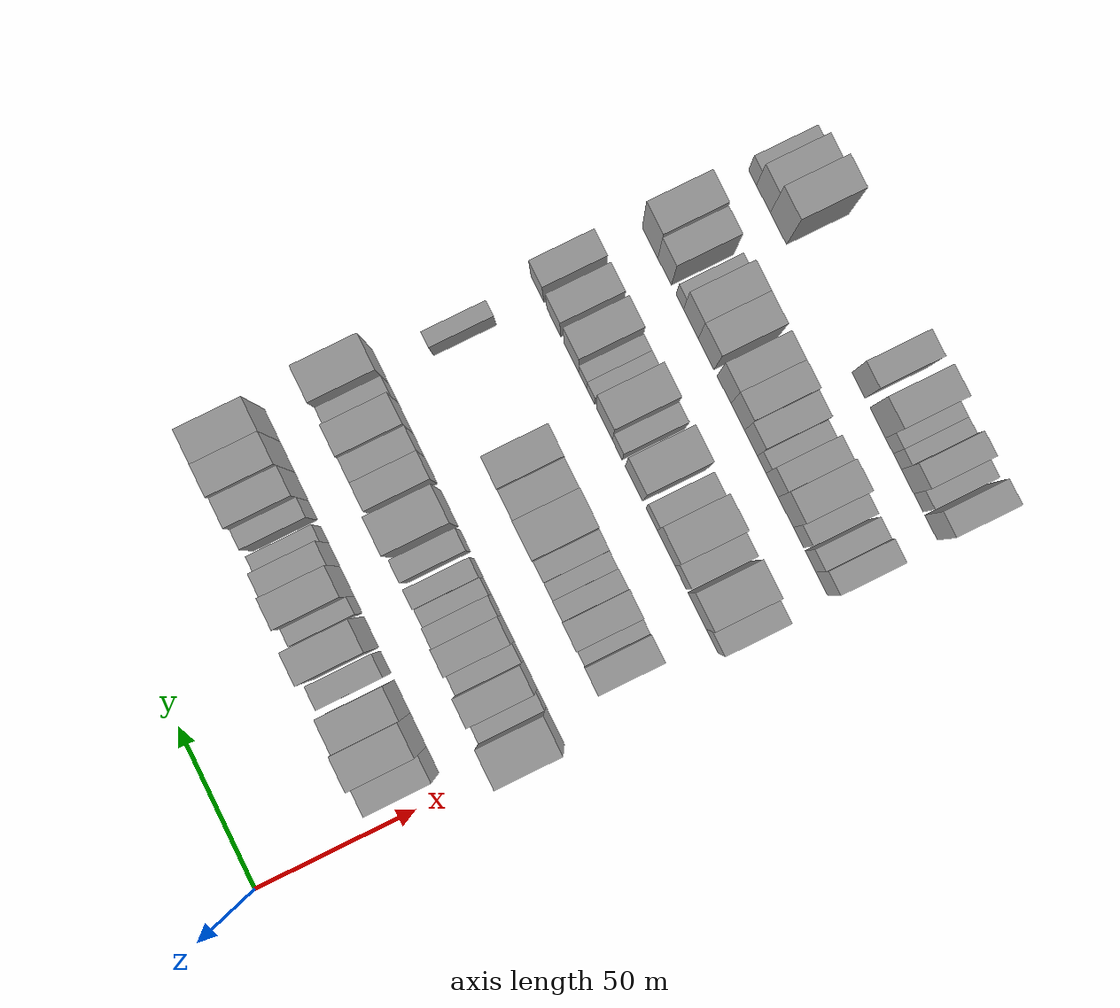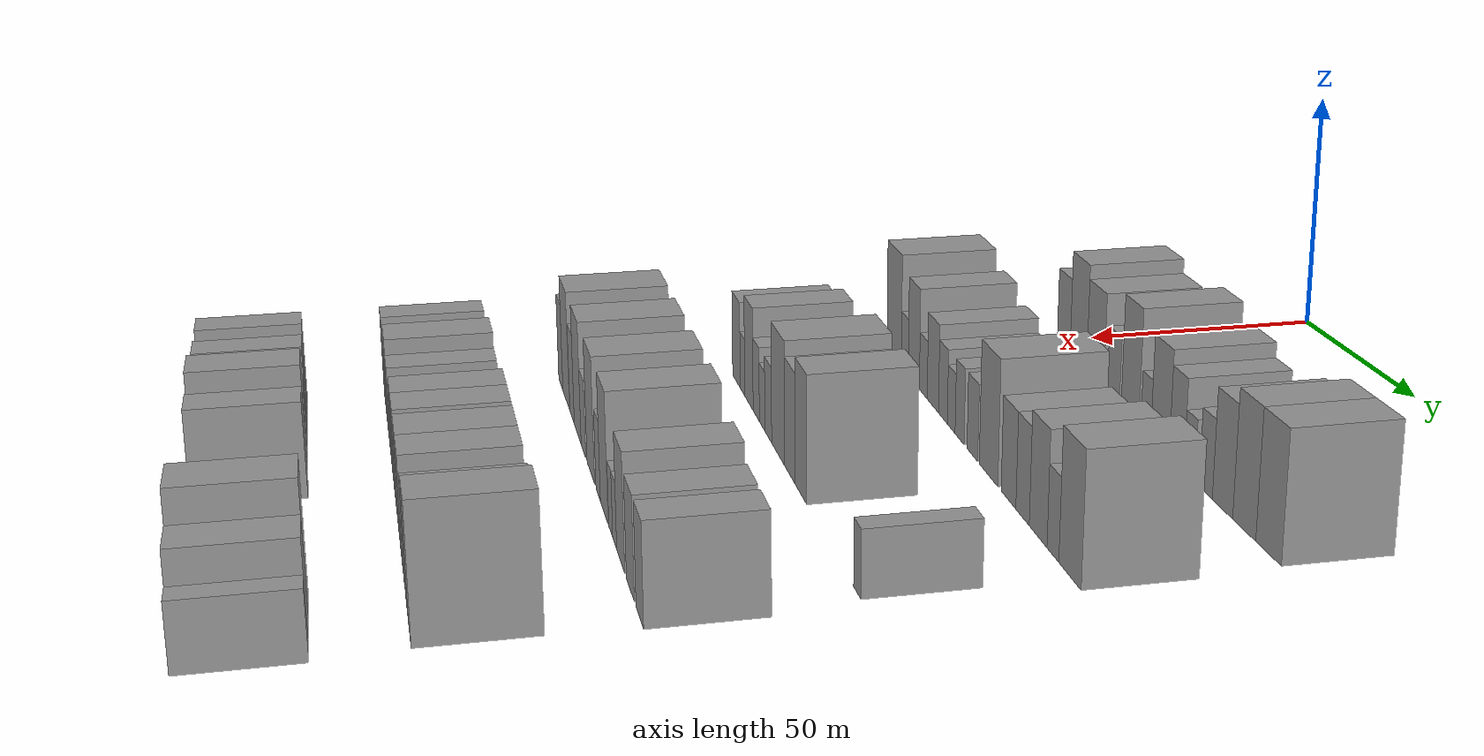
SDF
<sdf version="1.6">
 <world name="default">
  <model name="building_61">
   <static>1</static>
   <pose>50.0000 10.2967 0 0.000000 0.000000 0.000000</pose>
   <link name="link">
    <pose>0 0 9.00 0 0 0</pose>
    <collision name="collision"><geometry><box><size>20.0000 8.2506 18.0000</size></box></geometry></collision>
    <visual name="visual">
     <cast_shadows>0</cast_shadows>
     <geometry><box><size>20.0000 8.2506 18.0000</size></box></geometry>
     <material>
      <script>
       <uri>model://grey_wall/materials/scripts</uri>
       <uri>model://grey_wall/materials/textures</uri>
       <name>vrc/grey_wall</name>
      </script>
     </material>
    </visual>
   </link>
  </model>
  <model name="building_62">
   <static>1</static>
   <pose>50.0000 19.6122 0 0.000000 0.000000 0.000000</pose>
   <link name="link">
    <pose>0 0 12.00 0 0 0</pose>
    <collision name="collision"><geometry><box><size>20.0000 10.3805 24.0000</size></box></geometry></collision>
    <visual name="visual">
     <cast_shadows>0</cast_shadows>
     <geometry><box><size>20.0000 10.3805 24.0000</size></box></geometry>
     <material>
      <script>
       <uri>model://grey_wall/materials/scripts</uri>
       <uri>model://grey_wall/materials/textures</uri>
       <name>vrc/grey_wall</name>
      </script>
     </material>
    </visual>
   </link>
  </model>
  <model name="building_63">
   <static>1</static>
   <pose>50.0000 29.9259 0 0.000000 0.000000 0.000000</pose>
   <link name="link">
    <pose>0 0 10.50 0 0 0</pose>
    <collision name="collision"><geometry><box><size>20.0000 10.2469 21.0000</size></box></geometry></collision>
    <visual name="visual">
     <cast_shadows>0</cast_shadows>
     <geometry><box><size>20.0000 10.2469 21.0000</size></box></geometry>
     <material>
      <script>
       <uri>model://grey_wall/materials/scripts</uri>
       <uri>model://grey_wall/materials/textures</uri>
       <name>vrc/grey_wall</name>
      </script>
     </material>
    </visual>
   </link>
  </model>
  <model name="building_64">
   <static>1</static>
   <pose>50.0000 40.5911 0 0.000000 0.000000 0.000000</pose>
   <link name="link">
    <pose>0 0 7.50 0 0 0</pose>
    <collision name="collision"><geometry><box><size>20.0000 7.0836 15.0000</size></box></geometry></collision>
    <visual name="visual">
     <cast_shadows>0</cast_shadows>
     <geometry><box><size>20.0000 7.0836 15.0000</size></box></geometry>
     <material>
      <script>
       <uri>model://grey_wall/materials/scripts</uri>
       <uri>model://grey_wall/materials/textures</uri>
       <name>vrc/grey_wall</name>
      </script>
     </material>
    </visual>
   </link>
  </model>
  <model name="building_65">
   <static>1</static>
   <pose>50.0000 50.0073 0 0.000000 0.000000 0.000000</pose>
   <link name="link">
    <pose>0 0 12.00 0 0 0</pose>
    <collision name="collision"><geometry><box><size>20.0000 9.7487 24.0000</size></box></geometry></collision>
    <visual name="visual">
     <cast_shadows>0</cast_shadows>
     <geometry><box><size>20.0000 9.7487 24.0000</size></box></geometry>
     <material>
      <script>
       <uri>model://grey_wall/materials/scripts</uri>
       <uri>model://grey_wall/materials/textures</uri>
       <name>vrc/grey_wall</name>
      </script>
     </material>
    </visual>
   </link>
  </model>
  <model name="building_66">
   <static>1</static>
   <pose>50.0000 58.5451 0 0.000000 0.000000 0.000000</pose>
   <link name="link">
    <pose>0 0 6.00 0 0 0</pose>
    <collision name="collision"><geometry><box><size>20.0000 5.3269 12.0000</size></box></geometry></collision>
    <visual name="visual">
     <cast_shadows>0</cast_shadows>
     <geometry><box><size>20.0000 5.3269 12.0000</size></box></geometry>
     <material>
      <script>
       <uri>model://grey_wall/materials/scripts</uri>
       <uri>model://grey_wall/materials/textures</uri>
       <name>vrc/grey_wall</name>
      </script>
     </material>
    </visual>
   </link>
  </model>
  <model name="building_67">
   <static>1</static>
   <pose>50.0000 65.9376 0 0.000000 0.000000 0.000000</pose>
   <link name="link">
    <pose>0 0 10.50 0 0 0</pose>
    <collision name="collision"><geometry><box><size>20.0000 9.4582 21.0000</size></box></geometry></collision>
    <visual name="visual">
     <cast_shadows>0</cast_shadows>
     <geometry><box><size>20.0000 9.4582 21.0000</size></box></geometry>
     <material>
      <script>
       <uri>model://grey_wall/materials/scripts</uri>
       <uri>model://grey_wall/materials/textures</uri>
       <name>vrc/grey_wall</name>
      </script>
     </material>
    </visual>
   </link>
  </model>
  <model name="building_68">
   <static>1</static>
   <pose>50.0000 74.3340 0 0.000000 0.000000 0.000000</pose>
   <link name="link">
    <pose>0 0 9.00 0 0 0</pose>
    <collision name="collision"><geometry><box><size>20.0000 7.3345 18.0000</size></box></geometry></collision>
    <visual name="visual">
     <cast_shadows>0</cast_shadows>
     <geometry><box><size>20.0000 7.3345 18.0000</size></box></geometry>
     <material>
      <script>
       <uri>model://grey_wall/materials/scripts</uri>
       <uri>model://grey_wall/materials/textures</uri>
       <name>vrc/grey_wall</name>
      </script>
     </material>
    </visual>
   </link>
  </model>
  <model name="building_69">
   <static>1</static>
   <pose>50.0000 80.6047 0 0.000000 0.000000 0.000000</pose>
   <link name="link">
    <pose>0 0 6.00 0 0 0</pose>
    <collision name="collision"><geometry><box><size>20.0000 5.2070 12.0000</size></box></geometry></collision>
    <visual name="visual">
     <cast_shadows>0</cast_shadows>
     <geometry><box><size>20.0000 5.2070 12.0000</size></box></geometry>
     <material>
      <script>
       <uri>model://grey_wall/materials/scripts</uri>
       <uri>model://grey_wall/materials/textures</uri>
       <name>vrc/grey_wall</name>
      </script>
     </material>
    </visual>
   </link>
  </model>
  <model name="building_70">
   <static>1</static>
   <pose>50.0000 88.2737 0 0.000000 0.000000 0.000000</pose>
   <link name="link">
    <pose>0 0 7.50 0 0 0</pose>
    <collision name="collision"><geometry><box><size>20.0000 6.1310 15.0000</size></box></geometry></collision>
    <visual name="visual">
     <cast_shadows>0</cast_shadows>
     <geometry><box><size>20.0000 6.1310 15.0000</size></box></geometry>
     <material>
      <script>
       <uri>model://grey_wall/materials/scripts</uri>
       <uri>model://grey_wall/materials/textures</uri>
       <name>vrc/grey_wall</name>
      </script>
     </material>
    </visual>
   </link>
  </model>
  <model name="building_71">
   <static>1</static>
   <pose>50.0000 95.8668 0 0.000000 0.000000 0.000000</pose>
   <link name="link">
    <pose>0 0 10.50 0 0 0</pose>
    <collision name="collision"><geometry><box><size>20.0000 9.0553 21.0000</size></box></geometry></collision>
    <visual name="visual">
     <cast_shadows>0</cast_shadows>
     <geometry><box><size>20.0000 9.0553 21.0000</size></box></geometry>
     <material>
      <script>
       <uri>model://grey_wall/materials/scripts</uri>
       <uri>model://grey_wall/materials/textures</uri>
       <name>vrc/grey_wall</name>
      </script>
     </material>
    </visual>
   </link>
  </model>
  <model name="building_72">
   <static>1</static>
   <pose>50.0000 105.3001 0 0.000000 0.000000 0.000000</pose>
   <link name="link">
    <pose>0 0 12.00 0 0 0</pose>
    <collision name="collision"><geometry><box><size>20.0000 9.8113 24.0000</size></box></geometry></collision>
    <visual name="visual">
     <cast_shadows>0</cast_shadows>
     <geometry><box><size>20.0000 9.8113 24.0000</size></box></geometry>
     <material>
      <script>
       <uri>model://grey_wall/materials/scripts</uri>
       <uri>model://grey_wall/materials/textures</uri>
       <name>vrc/grey_wall</name>
      </script>
     </material>
    </visual>
   </link>
  </model>
  <model name="building_73">
   <static>1</static>
   <pose>50.0000 115.3915 0 0.000000 0.000000 0.000000</pose>
   <link name="link">
    <pose>0 0 12.00 0 0 0</pose>
    <collision name="collision"><geometry><box><size>20.0000 10.3714 24.0000</size></box></geometry></collision>
    <visual name="visual">
     <cast_shadows>0</cast_shadows>
     <geometry><box><size>20.0000 10.3714 24.0000</size></box></geometry>
     <material>
      <script>
       <uri>model://grey_wall/materials/scripts</uri>
       <uri>model://grey_wall/materials/textures</uri>
       <name>vrc/grey_wall</name>
      </script>
     </material>
    </visual>
   </link>
  </model>
  <model name="building_179">
   <static>1</static>
   <pose>85.0000 3.6711 0 0.000000 0.000000 0.000000</pose>
   <link name="link">
    <pose>0 0 12.00 0 0 0</pose>
    <collision name="collision"><geometry><box><size>20.0000 11.7831 24.0000</size></box></geometry></collision>
    <visual name="visual">
     <cast_shadows>0</cast_shadows>
     <geometry><box><size>20.0000 11.7831 24.0000</size></box></geometry>
     <material>
      <script>
       <uri>model://grey_wall/materials/scripts</uri>
       <uri>model://grey_wall/materials/textures</uri>
       <name>vrc/grey_wall</name>
      </script>
     </material>
    </visual>
   </link>
  </model>
  <model name="building_180">
   <static>1</static>
   <pose>85.0000 12.3757 0 0.000000 0.000000 0.000000</pose>
   <link name="link">
    <pose>0 0 6.00 0 0 0</pose>
    <collision name="collision"><geometry><box><size>20.0000 5.6262 12.0000</size></box></geometry></collision>
    <visual name="visual">
     <cast_shadows>0</cast_shadows>
     <geometry><box><size>20.0000 5.6262 12.0000</size></box></geometry>
     <material>
      <script>
       <uri>model://grey_wall/materials/scripts</uri>
       <uri>model://grey_wall/materials/textures</uri>
       <name>vrc/grey_wall</name>
      </script>
     </material>
    </visual>
   </link>
  </model>
  <model name="building_181">
   <static>1</static>
   <pose>85.0000 19.5526 0 0.000000 0.000000 0.000000</pose>
   <link name="link">
    <pose>0 0 10.50 0 0 0</pose>
    <collision name="collision"><geometry><box><size>20.0000 8.7275 21.0000</size></box></geometry></collision>
    <visual name="visual">
     <cast_shadows>0</cast_shadows>
     <geometry><box><size>20.0000 8.7275 21.0000</size></box></geometry>
     <material>
      <script>
       <uri>model://grey_wall/materials/scripts</uri>
       <uri>model://grey_wall/materials/textures</uri>
       <name>vrc/grey_wall</name>
      </script>
     </material>
    </visual>
   </link>
  </model>
  <model name="building_182">
   <static>1</static>
   <pose>85.0000 26.8824 0 0.000000 0.000000 0.000000</pose>
   <link name="link">
    <pose>0 0 6.00 0 0 0</pose>
    <collision name="collision"><geometry><box><size>20.0000 5.9322 12.0000</size></box></geometry></collision>
    <visual name="visual">
     <cast_shadows>0</cast_shadows>
     <geometry><box><size>20.0000 5.9322 12.0000</size></box></geometry>
     <material>
      <script>
       <uri>model://grey_wall/materials/scripts</uri>
       <uri>model://grey_wall/materials/textures</uri>
       <name>vrc/grey_wall</name>
      </script>
     </material>
    </visual>
   </link>
  </model>
  <model name="building_183">
   <static>1</static>
   <pose>85.0000 33.9861 0 0.000000 0.000000 0.000000</pose>
   <link name="link">
    <pose>0 0 9.00 0 0 0</pose>
    <collision name="collision"><geometry><box><size>20.0000 8.2751 18.0000</size></box></geometry></collision>
    <visual name="visual">
     <cast_shadows>0</cast_shadows>
     <geometry><box><size>20.0000 8.2751 18.0000</size></box></geometry>
     <material>
      <script>
       <uri>model://grey_wall/materials/scripts</uri>
       <uri>model://grey_wall/materials/textures</uri>
       <name>vrc/grey_wall</name>
      </script>
     </material>
    </visual>
   </link>
  </model>
  <model name="building_184">
   <static>1</static>
   <pose>85.0000 41.2750 0 0.000000 0.000000 0.000000</pose>
   <link name="link">
    <pose>0 0 7.50 0 0 0</pose>
    <collision name="collision"><geometry><box><size>20.0000 6.3028 15.0000</size></box></geometry></collision>
    <visual name="visual">
     <cast_shadows>0</cast_shadows>
     <geometry><box><size>20.0000 6.3028 15.0000</size></box></geometry>
     <material>
      <script>
       <uri>model://grey_wall/materials/scripts</uri>
       <uri>model://grey_wall/materials/textures</uri>
       <name>vrc/grey_wall</name>
      </script>
     </material>
    </visual>
   </link>
  </model>
  <model name="building_185">
   <static>1</static>
   <pose>85.0000 47.1397 0 0.000000 0.000000 0.000000</pose>
   <link name="link">
    <pose>0 0 6.00 0 0 0</pose>
    <collision name="collision"><geometry><box><size>20.0000 5.4266 12.0000</size></box></geometry></collision>
    <visual name="visual">
     <cast_shadows>0</cast_shadows>
     <geometry><box><size>20.0000 5.4266 12.0000</size></box></geometry>
     <material>
      <script>
       <uri>model://grey_wall/materials/scripts</uri>
       <uri>model://grey_wall/materials/textures</uri>
       <name>vrc/grey_wall</name>
      </script>
     </material>
    </visual>
   </link>
  </model>
  <model name="building_186">
   <static>1</static>
   <pose>85.0000 52.8786 0 0.000000 0.000000 0.000000</pose>
   <link name="link">
    <pose>0 0 7.50 0 0 0</pose>
    <collision name="collision"><geometry><box><size>20.0000 6.0511 15.0000</size></box></geometry></collision>
    <visual name="visual">
     <cast_shadows>0</cast_shadows>
     <geometry><box><size>20.0000 6.0511 15.0000</size></box></geometry>
     <material>
      <script>
       <uri>model://grey_wall/materials/scripts</uri>
       <uri>model://grey_wall/materials/textures</uri>
       <name>vrc/grey_wall</name>
      </script>
     </material>
    </visual>
   </link>
  </model>
  <model name="building_187">
   <static>1</static>
   <pose>85.0000 61.3640 0 0.000000 0.000000 0.000000</pose>
   <link name="link">
    <pose>0 0 7.50 0 0 0</pose>
    <collision name="collision"><geometry><box><size>20.0000 6.9197 15.0000</size></box></geometry></collision>
    <visual name="visual">
     <cast_shadows>0</cast_shadows>
     <geometry><box><size>20.0000 6.9197 15.0000</size></box></geometry>
     <material>
      <script>
       <uri>model://grey_wall/materials/scripts</uri>
       <uri>model://grey_wall/materials/textures</uri>
       <name>vrc/grey_wall</name>
      </script>
     </material>
    </visual>
   </link>
  </model>
  <model name="building_188">
   <static>1</static>
   <pose>85.0000 71.5929 0 0.000000 0.000000 0.000000</pose>
   <link name="link">
    <pose>0 0 12.00 0 0 0</pose>
    <collision name="collision"><geometry><box><size>20.0000 11.5379 24.0000</size></box></geometry></collision>
    <visual name="visual">
     <cast_shadows>0</cast_shadows>
     <geometry><box><size>20.0000 11.5379 24.0000</size></box></geometry>
     <material>
      <script>
       <uri>model://grey_wall/materials/scripts</uri>
       <uri>model://grey_wall/materials/textures</uri>
       <name>vrc/grey_wall</name>
      </script>
     </material>
    </visual>
   </link>
  </model>
  <model name="building_189">
   <static>1</static>
   <pose>85.0000 83.6676 0 0.000000 0.000000 0.000000</pose>
   <link name="link">
    <pose>0 0 9.00 0 0 0</pose>
    <collision name="collision"><geometry><box><size>20.0000 8.6117 18.0000</size></box></geometry></collision>
    <visual name="visual">
     <cast_shadows>0</cast_shadows>
     <geometry><box><size>20.0000 8.6117 18.0000</size></box></geometry>
     <material>
      <script>
       <uri>model://grey_wall/materials/scripts</uri>
       <uri>model://grey_wall/materials/textures</uri>
       <name>vrc/grey_wall</name>
      </script>
     </material>
    </visual>
   </link>
  </model>
  <model name="building_190">
   <static>1</static>
   <pose>85.0000 91.7467 0 0.000000 0.000000 0.000000</pose>
   <link name="link">
    <pose>0 0 9.00 0 0 0</pose>
    <collision name="collision"><geometry><box><size>20.0000 7.5464 18.0000</size></box></geometry></collision>
    <visual name="visual">
     <cast_shadows>0</cast_shadows>
     <geometry><box><size>20.0000 7.5464 18.0000</size></box></geometry>
     <material>
      <script>
       <uri>model://grey_wall/materials/scripts</uri>
       <uri>model://grey_wall/materials/textures</uri>
       <name>vrc/grey_wall</name>
      </script>
     </material>
    </visual>
   </link>
  </model>
  <model name="building_191">
   <static>1</static>
   <pose>85.0000 100.3142 0 0.000000 0.000000 0.000000</pose>
   <link name="link">
    <pose>0 0 10.50 0 0 0</pose>
    <collision name="collision"><geometry><box><size>20.0000 9.5887 21.0000</size></box></geometry></collision>
    <visual name="visual">
     <cast_shadows>0</cast_shadows>
     <geometry><box><size>20.0000 9.5887 21.0000</size></box></geometry>
     <material>
      <script>
       <uri>model://grey_wall/materials/scripts</uri>
       <uri>model://grey_wall/materials/textures</uri>
       <name>vrc/grey_wall</name>
      </script>
     </material>
    </visual>
   </link>
  </model>
  <model name="building_192">
   <static>1</static>
   <pose>85.0000 108.1706 0 0.000000 0.000000 0.000000</pose>
   <link name="link">
    <pose>0 0 7.50 0 0 0</pose>
    <collision name="collision"><geometry><box><size>20.0000 6.1240 15.0000</size></box></geometry></collision>
    <visual name="visual">
     <cast_shadows>0</cast_shadows>
     <geometry><box><size>20.0000 6.1240 15.0000</size></box></geometry>
     <material>
      <script>
       <uri>model://grey_wall/materials/scripts</uri>
       <uri>model://grey_wall/materials/textures</uri>
       <name>vrc/grey_wall</name>
      </script>
     </material>
    </visual>
   </link>
  </model>
  <model name="building_193">
   <static>1</static>
   <pose>85.0000 116.7842 0 0.000000 0.000000 0.000000</pose>
   <link name="link">
    <pose>0 0 12.00 0 0 0</pose>
    <collision name="collision"><geometry><box><size>20.0000 11.1034 24.0000</size></box></geometry></collision>
    <visual name="visual">
     <cast_shadows>0</cast_shadows>
     <geometry><box><size>20.0000 11.1034 24.0000</size></box></geometry>
     <material>
      <script>
       <uri>model://grey_wall/materials/scripts</uri>
       <uri>model://grey_wall/materials/textures</uri>
       <name>vrc/grey_wall</name>
      </script>
     </material>
    </visual>
   </link>
  </model>
  <model name="building_303">
   <static>1</static>
   <pose>120.0000 11.3256 0 0.000000 0.000000 0.000000</pose>
   <link name="link">
    <pose>0 0 9.00 0 0 0</pose>
    <collision name="collision"><geometry><box><size>20.0000 8.3350 18.0000</size></box></geometry></collision>
    <visual name="visual">
     <cast_shadows>0</cast_shadows>
     <geometry><box><size>20.0000 8.3350 18.0000</size></box></geometry>
     <material>
      <script>
       <uri>model://grey_wall/materials/scripts</uri>
       <uri>model://grey_wall/materials/textures</uri>
       <name>vrc/grey_wall</name>
      </script>
     </material>
    </visual>
   </link>
  </model>
  <model name="building_304">
   <static>1</static>
   <pose>120.0000 17.9224 0 0.000000 0.000000 0.000000</pose>
   <link name="link">
    <pose>0 0 6.00 0 0 0</pose>
    <collision name="collision"><geometry><box><size>20.0000 4.8585 12.0000</size></box></geometry></collision>
    <visual name="visual">
     <cast_shadows>0</cast_shadows>
     <geometry><box><size>20.0000 4.8585 12.0000</size></box></geometry>
     <material>
      <script>
       <uri>model://grey_wall/materials/scripts</uri>
       <uri>model://grey_wall/materials/textures</uri>
       <name>vrc/grey_wall</name>
      </script>
     </material>
    </visual>
   </link>
  </model>
  <model name="building_305">
   <static>1</static>
   <pose>120.0000 24.6654 0 0.000000 0.000000 0.000000</pose>
   <link name="link">
    <pose>0 0 10.50 0 0 0</pose>
    <collision name="collision"><geometry><box><size>20.0000 8.6275 21.0000</size></box></geometry></collision>
    <visual name="visual">
     <cast_shadows>0</cast_shadows>
     <geometry><box><size>20.0000 8.6275 21.0000</size></box></geometry>
     <material>
      <script>
       <uri>model://grey_wall/materials/scripts</uri>
       <uri>model://grey_wall/materials/textures</uri>
       <name>vrc/grey_wall</name>
      </script>
     </material>
    </visual>
   </link>
  </model>
  <model name="building_306">
   <static>1</static>
   <pose>120.0000 32.1276 0 0.000000 0.000000 0.000000</pose>
   <link name="link">
    <pose>0 0 7.50 0 0 0</pose>
    <collision name="collision"><geometry><box><size>20.0000 6.2968 15.0000</size></box></geometry></collision>
    <visual name="visual">
     <cast_shadows>0</cast_shadows>
     <geometry><box><size>20.0000 6.2968 15.0000</size></box></geometry>
     <material>
      <script>
       <uri>model://grey_wall/materials/scripts</uri>
       <uri>model://grey_wall/materials/textures</uri>
       <name>vrc/grey_wall</name>
      </script>
     </material>
    </visual>
   </link>
  </model>
  <model name="building_307">
   <static>1</static>
   <pose>120.0000 37.9907 0 0.000000 0.000000 0.000000</pose>
   <link name="link">
    <pose>0 0 6.00 0 0 0</pose>
    <collision name="collision"><geometry><box><size>20.0000 5.4295 12.0000</size></box></geometry></collision>
    <visual name="visual">
     <cast_shadows>0</cast_shadows>
     <geometry><box><size>20.0000 5.4295 12.0000</size></box></geometry>
     <material>
      <script>
       <uri>model://grey_wall/materials/scripts</uri>
       <uri>model://grey_wall/materials/textures</uri>
       <name>vrc/grey_wall</name>
      </script>
     </material>
    </visual>
   </link>
  </model>
  <model name="building_308">
   <static>1</static>
   <pose>120.0000 43.9283 0 0.000000 0.000000 0.000000</pose>
   <link name="link">
    <pose>0 0 7.50 0 0 0</pose>
    <collision name="collision"><geometry><box><size>20.0000 6.4457 15.0000</size></box></geometry></collision>
    <visual name="visual">
     <cast_shadows>0</cast_shadows>
     <geometry><box><size>20.0000 6.4457 15.0000</size></box></geometry>
     <material>
      <script>
       <uri>model://grey_wall/materials/scripts</uri>
       <uri>model://grey_wall/materials/textures</uri>
       <name>vrc/grey_wall</name>
      </script>
     </material>
    </visual>
   </link>
  </model>
  <model name="building_309">
   <static>1</static>
   <pose>120.0000 53.0754 0 0.000000 0.000000 0.000000</pose>
   <link name="link">
    <pose>0 0 12.00 0 0 0</pose>
    <collision name="collision"><geometry><box><size>20.0000 11.8485 24.0000</size></box></geometry></collision>
    <visual name="visual">
     <cast_shadows>0</cast_shadows>
     <geometry><box><size>20.0000 11.8485 24.0000</size></box></geometry>
     <material>
      <script>
       <uri>model://grey_wall/materials/scripts</uri>
       <uri>model://grey_wall/materials/textures</uri>
       <name>vrc/grey_wall</name>
      </script>
     </material>
    </visual>
   </link>
  </model>
  <model name="building_310">
   <static>1</static>
   <pose>120.0000 63.6548 0 0.000000 0.000000 0.000000</pose>
   <link name="link">
    <pose>0 0 10.50 0 0 0</pose>
    <collision name="collision"><geometry><box><size>20.0000 9.3103 21.0000</size></box></geometry></collision>
    <visual name="visual">
     <cast_shadows>0</cast_shadows>
     <geometry><box><size>20.0000 9.3103 21.0000</size></box></geometry>
     <material>
      <script>
       <uri>model://grey_wall/materials/scripts</uri>
       <uri>model://grey_wall/materials/textures</uri>
       <name>vrc/grey_wall</name>
      </script>
     </material>
    </visual>
   </link>
  </model>
  <model name="building_311">
   <static>1</static>
   <pose>120.0000 73.1765 0 0.000000 0.000000 0.000000</pose>
   <link name="link">
    <pose>0 0 12.00 0 0 0</pose>
    <collision name="collision"><geometry><box><size>20.0000 9.7332 24.0000</size></box></geometry></collision>
    <visual name="visual">
     <cast_shadows>0</cast_shadows>
     <geometry><box><size>20.0000 9.7332 24.0000</size></box></geometry>
     <material>
      <script>
       <uri>model://grey_wall/materials/scripts</uri>
       <uri>model://grey_wall/materials/textures</uri>
       <name>vrc/grey_wall</name>
      </script>
     </material>
    </visual>
   </link>
  </model>
  <model name="building_312">
   <static>1</static>
   <pose>120.0000 115.5056 0 0.000000 0.000000 0.000000</pose>
   <link name="link">
    <pose>0 0 6.00 0 0 0</pose>
    <collision name="collision"><geometry><box><size>20.0000 4.9750 12.0000</size></box></geometry></collision>
    <visual name="visual">
     <cast_shadows>0</cast_shadows>
     <geometry><box><size>20.0000 4.9750 12.0000</size></box></geometry>
     <material>
      <script>
       <uri>model://grey_wall/materials/scripts</uri>
       <uri>model://grey_wall/materials/textures</uri>
       <name>vrc/grey_wall</name>
      </script>
     </material>
    </visual>
   </link>
  </model>
  <model name="building_424">
   <static>1</static>
   <pose>155.0000 5.3034 0 0.000000 0.000000 0.000000</pose>
   <link name="link">
    <pose>0 0 9.00 0 0 0</pose>
    <collision name="collision"><geometry><box><size>20.0000 7.4955 18.0000</size></box></geometry></collision>
    <visual name="visual">
     <cast_shadows>0</cast_shadows>
     <geometry><box><size>20.0000 7.4955 18.0000</size></box></geometry>
     <material>
      <script>
       <uri>model://grey_wall/materials/scripts</uri>
       <uri>model://grey_wall/materials/textures</uri>
       <name>vrc/grey_wall</name>
      </script>
     </material>
    </visual>
   </link>
  </model>
  <model name="building_425">
   <static>1</static>
   <pose>155.0000 14.8056 0 0.000000 0.000000 0.000000</pose>
   <link name="link">
    <pose>0 0 12.00 0 0 0</pose>
    <collision name="collision"><geometry><box><size>20.0000 11.5089 24.0000</size></box></geometry></collision>
    <visual name="visual">
     <cast_shadows>0</cast_shadows>
     <geometry><box><size>20.0000 11.5089 24.0000</size></box></geometry>
     <material>
      <script>
       <uri>model://grey_wall/materials/scripts</uri>
       <uri>model://grey_wall/materials/textures</uri>
       <name>vrc/grey_wall</name>
      </script>
     </material>
    </visual>
   </link>
  </model>
  <model name="building_426">
   <static>1</static>
   <pose>155.0000 25.2402 0 0.000000 0.000000 0.000000</pose>
   <link name="link">
    <pose>0 0 9.00 0 0 0</pose>
    <collision name="collision"><geometry><box><size>20.0000 7.3604 18.0000</size></box></geometry></collision>
    <visual name="visual">
     <cast_shadows>0</cast_shadows>
     <geometry><box><size>20.0000 7.3604 18.0000</size></box></geometry>
     <material>
      <script>
       <uri>model://grey_wall/materials/scripts</uri>
       <uri>model://grey_wall/materials/textures</uri>
       <name>vrc/grey_wall</name>
      </script>
     </material>
    </visual>
   </link>
  </model>
  <model name="building_427">
   <static>1</static>
   <pose>155.0000 34.4680 0 0.000000 0.000000 0.000000</pose>
   <link name="link">
    <pose>0 0 12.00 0 0 0</pose>
    <collision name="collision"><geometry><box><size>20.0000 11.0951 24.0000</size></box></geometry></collision>
    <visual name="visual">
     <cast_shadows>0</cast_shadows>
     <geometry><box><size>20.0000 11.0951 24.0000</size></box></geometry>
     <material>
      <script>
       <uri>model://grey_wall/materials/scripts</uri>
       <uri>model://grey_wall/materials/textures</uri>
       <name>vrc/grey_wall</name>
      </script>
     </material>
    </visual>
   </link>
  </model>
  <model name="building_428">
   <static>1</static>
   <pose>155.0000 43.6502 0 0.000000 0.000000 0.000000</pose>
   <link name="link">
    <pose>0 0 7.50 0 0 0</pose>
    <collision name="collision"><geometry><box><size>20.0000 7.2694 15.0000</size></box></geometry></collision>
    <visual name="visual">
     <cast_shadows>0</cast_shadows>
     <geometry><box><size>20.0000 7.2694 15.0000</size></box></geometry>
     <material>
      <script>
       <uri>model://grey_wall/materials/scripts</uri>
       <uri>model://grey_wall/materials/textures</uri>
       <name>vrc/grey_wall</name>
      </script>
     </material>
    </visual>
   </link>
  </model>
  <model name="building_429">
   <static>1</static>
   <pose>155.0000 54.8533 0 0.000000 0.000000 0.000000</pose>
   <link name="link">
    <pose>0 0 12.00 0 0 0</pose>
    <collision name="collision"><geometry><box><size>20.0000 11.1367 24.0000</size></box></geometry></collision>
    <visual name="visual">
     <cast_shadows>0</cast_shadows>
     <geometry><box><size>20.0000 11.1367 24.0000</size></box></geometry>
     <material>
      <script>
       <uri>model://grey_wall/materials/scripts</uri>
       <uri>model://grey_wall/materials/textures</uri>
       <name>vrc/grey_wall</name>
      </script>
     </material>
    </visual>
   </link>
  </model>
  <model name="building_430">
   <static>1</static>
   <pose>155.0000 65.5362 0 0.000000 0.000000 0.000000</pose>
   <link name="link">
    <pose>0 0 7.50 0 0 0</pose>
    <collision name="collision"><geometry><box><size>20.0000 6.2291 15.0000</size></box></geometry></collision>
    <visual name="visual">
     <cast_shadows>0</cast_shadows>
     <geometry><box><size>20.0000 6.2291 15.0000</size></box></geometry>
     <material>
      <script>
       <uri>model://grey_wall/materials/scripts</uri>
       <uri>model://grey_wall/materials/textures</uri>
       <name>vrc/grey_wall</name>
      </script>
     </material>
    </visual>
   </link>
  </model>
  <model name="building_431">
   <static>1</static>
   <pose>155.0000 73.8585 0 0.000000 0.000000 0.000000</pose>
   <link name="link">
    <pose>0 0 12.00 0 0 0</pose>
    <collision name="collision"><geometry><box><size>20.0000 10.4155 24.0000</size></box></geometry></collision>
    <visual name="visual">
     <cast_shadows>0</cast_shadows>
     <geometry><box><size>20.0000 10.4155 24.0000</size></box></geometry>
     <material>
      <script>
       <uri>model://grey_wall/materials/scripts</uri>
       <uri>model://grey_wall/materials/textures</uri>
       <name>vrc/grey_wall</name>
      </script>
     </material>
    </visual>
   </link>
  </model>
  <model name="building_432">
   <static>1</static>
   <pose>155.0000 82.5621 0 0.000000 0.000000 0.000000</pose>
   <link name="link">
    <pose>0 0 6.00 0 0 0</pose>
    <collision name="collision"><geometry><box><size>20.0000 4.9917 12.0000</size></box></geometry></collision>
    <visual name="visual">
     <cast_shadows>0</cast_shadows>
     <geometry><box><size>20.0000 4.9917 12.0000</size></box></geometry>
     <material>
      <script>
       <uri>model://grey_wall/materials/scripts</uri>
       <uri>model://grey_wall/materials/textures</uri>
       <name>vrc/grey_wall</name>
      </script>
     </material>
    </visual>
   </link>
  </model>
  <model name="building_433">
   <static>1</static>
   <pose>155.0000 87.6311 0 0.000000 0.000000 0.000000</pose>
   <link name="link">
    <pose>0 0 6.00 0 0 0</pose>
    <collision name="collision"><geometry><box><size>20.0000 5.1464 12.0000</size></box></geometry></collision>
    <visual name="visual">
     <cast_shadows>0</cast_shadows>
     <geometry><box><size>20.0000 5.1464 12.0000</size></box></geometry>
     <material>
      <script>
       <uri>model://grey_wall/materials/scripts</uri>
       <uri>model://grey_wall/materials/textures</uri>
       <name>vrc/grey_wall</name>
      </script>
     </material>
    </visual>
   </link>
  </model>
  <model name="building_434">
   <static>1</static>
   <pose>155.0000 95.0454 0 0.000000 0.000000 0.000000</pose>
   <link name="link">
    <pose>0 0 10.50 0 0 0</pose>
    <collision name="collision"><geometry><box><size>20.0000 9.6822 21.0000</size></box></geometry></collision>
    <visual name="visual">
     <cast_shadows>0</cast_shadows>
     <geometry><box><size>20.0000 9.6822 21.0000</size></box></geometry>
     <material>
      <script>
       <uri>model://grey_wall/materials/scripts</uri>
       <uri>model://grey_wall/materials/textures</uri>
       <name>vrc/grey_wall</name>
      </script>
     </material>
    </visual>
   </link>
  </model>
  <model name="building_435">
   <static>1</static>
   <pose>155.0000 106.3838 0 0.000000 0.000000 0.000000</pose>
   <link name="link">
    <pose>0 0 9.00 0 0 0</pose>
    <collision name="collision"><geometry><box><size>20.0000 8.9946 18.0000</size></box></geometry></collision>
    <visual name="visual">
     <cast_shadows>0</cast_shadows>
     <geometry><box><size>20.0000 8.9946 18.0000</size></box></geometry>
     <material>
      <script>
       <uri>model://grey_wall/materials/scripts</uri>
       <uri>model://grey_wall/materials/textures</uri>
       <name>vrc/grey_wall</name>
      </script>
     </material>
    </visual>
   </link>
  </model>
  <model name="building_436">
   <static>1</static>
   <pose>155.0000 117.0403 0 0.000000 0.000000 0.000000</pose>
   <link name="link">
    <pose>0 0 9.00 0 0 0</pose>
    <collision name="collision"><geometry><box><size>20.0000 8.3185 18.0000</size></box></geometry></collision>
    <visual name="visual">
     <cast_shadows>0</cast_shadows>
     <geometry><box><size>20.0000 8.3185 18.0000</size></box></geometry>
     <material>
      <script>
       <uri>model://grey_wall/materials/scripts</uri>
       <uri>model://grey_wall/materials/textures</uri>
       <name>vrc/grey_wall</name>
      </script>
     </material>
    </visual>
   </link>
  </model>
  <model name="building_552">
   <static>1</static>
   <pose>190.0000 6.0773 0 0.000000 0.000000 0.000000</pose>
   <link name="link">
    <pose>0 0 9.00 0 0 0</pose>
    <collision name="collision"><geometry><box><size>20.0000 7.2080 18.0000</size></box></geometry></collision>
    <visual name="visual">
     <cast_shadows>0</cast_shadows>
     <geometry><box><size>20.0000 7.2080 18.0000</size></box></geometry>
     <material>
      <script>
       <uri>model://grey_wall/materials/scripts</uri>
       <uri>model://grey_wall/materials/textures</uri>
       <name>vrc/grey_wall</name>
      </script>
     </material>
    </visual>
   </link>
  </model>
  <model name="building_553">
   <static>1</static>
   <pose>190.0000 13.0309 0 0.000000 0.000000 0.000000</pose>
   <link name="link">
    <pose>0 0 7.50 0 0 0</pose>
    <collision name="collision"><geometry><box><size>20.0000 6.6991 15.0000</size></box></geometry></collision>
    <visual name="visual">
     <cast_shadows>0</cast_shadows>
     <geometry><box><size>20.0000 6.6991 15.0000</size></box></geometry>
     <material>
      <script>
       <uri>model://grey_wall/materials/scripts</uri>
       <uri>model://grey_wall/materials/textures</uri>
       <name>vrc/grey_wall</name>
      </script>
     </material>
    </visual>
   </link>
  </model>
  <model name="building_554">
   <static>1</static>
   <pose>190.0000 20.5789 0 0.000000 0.000000 0.000000</pose>
   <link name="link">
    <pose>0 0 7.50 0 0 0</pose>
    <collision name="collision"><geometry><box><size>20.0000 6.3971 15.0000</size></box></geometry></collision>
    <visual name="visual">
     <cast_shadows>0</cast_shadows>
     <geometry><box><size>20.0000 6.3971 15.0000</size></box></geometry>
     <material>
      <script>
       <uri>model://grey_wall/materials/scripts</uri>
       <uri>model://grey_wall/materials/textures</uri>
       <name>vrc/grey_wall</name>
      </script>
     </material>
    </visual>
   </link>
  </model>
  <model name="building_555">
   <static>1</static>
   <pose>190.0000 28.5827 0 0.000000 0.000000 0.000000</pose>
   <link name="link">
    <pose>0 0 10.50 0 0 0</pose>
    <collision name="collision"><geometry><box><size>20.0000 9.6104 21.0000</size></box></geometry></collision>
    <visual name="visual">
     <cast_shadows>0</cast_shadows>
     <geometry><box><size>20.0000 9.6104 21.0000</size></box></geometry>
     <material>
      <script>
       <uri>model://grey_wall/materials/scripts</uri>
       <uri>model://grey_wall/materials/textures</uri>
       <name>vrc/grey_wall</name>
      </script>
     </material>
    </visual>
   </link>
  </model>
  <model name="building_556">
   <static>1</static>
   <pose>190.0000 37.1460 0 0.000000 0.000000 0.000000</pose>
   <link name="link">
    <pose>0 0 9.00 0 0 0</pose>
    <collision name="collision"><geometry><box><size>20.0000 7.5162 18.0000</size></box></geometry></collision>
    <visual name="visual">
     <cast_shadows>0</cast_shadows>
     <geometry><box><size>20.0000 7.5162 18.0000</size></box></geometry>
     <material>
      <script>
       <uri>model://grey_wall/materials/scripts</uri>
       <uri>model://grey_wall/materials/textures</uri>
       <name>vrc/grey_wall</name>
      </script>
     </material>
    </visual>
   </link>
  </model>
  <model name="building_557">
   <static>1</static>
   <pose>190.0000 43.6619 0 0.000000 0.000000 0.000000</pose>
   <link name="link">
    <pose>0 0 6.00 0 0 0</pose>
    <collision name="collision"><geometry><box><size>20.0000 5.5156 12.0000</size></box></geometry></collision>
    <visual name="visual">
     <cast_shadows>0</cast_shadows>
     <geometry><box><size>20.0000 5.5156 12.0000</size></box></geometry>
     <material>
      <script>
       <uri>model://grey_wall/materials/scripts</uri>
       <uri>model://grey_wall/materials/textures</uri>
       <name>vrc/grey_wall</name>
      </script>
     </material>
    </visual>
   </link>
  </model>
  <model name="building_558">
   <static>1</static>
   <pose>190.0000 50.4843 0 0.000000 0.000000 0.000000</pose>
   <link name="link">
    <pose>0 0 9.00 0 0 0</pose>
    <collision name="collision"><geometry><box><size>20.0000 8.1293 18.0000</size></box></geometry></collision>
    <visual name="visual">
     <cast_shadows>0</cast_shadows>
     <geometry><box><size>20.0000 8.1293 18.0000</size></box></geometry>
     <material>
      <script>
       <uri>model://grey_wall/materials/scripts</uri>
       <uri>model://grey_wall/materials/textures</uri>
       <name>vrc/grey_wall</name>
      </script>
     </material>
    </visual>
   </link>
  </model>
  <model name="building_559">
   <static>1</static>
   <pose>190.0000 58.8631 0 0.000000 0.000000 0.000000</pose>
   <link name="link">
    <pose>0 0 10.50 0 0 0</pose>
    <collision name="collision"><geometry><box><size>20.0000 8.6285 21.0000</size></box></geometry></collision>
    <visual name="visual">
     <cast_shadows>0</cast_shadows>
     <geometry><box><size>20.0000 8.6285 21.0000</size></box></geometry>
     <material>
      <script>
       <uri>model://grey_wall/materials/scripts</uri>
       <uri>model://grey_wall/materials/textures</uri>
       <name>vrc/grey_wall</name>
      </script>
     </material>
    </visual>
   </link>
  </model>
  <model name="building_560">
   <static>1</static>
   <pose>190.0000 67.5992 0 0.000000 0.000000 0.000000</pose>
   <link name="link">
    <pose>0 0 10.50 0 0 0</pose>
    <collision name="collision"><geometry><box><size>20.0000 8.8436 21.0000</size></box></geometry></collision>
    <visual name="visual">
     <cast_shadows>0</cast_shadows>
     <geometry><box><size>20.0000 8.8436 21.0000</size></box></geometry>
     <material>
      <script>
       <uri>model://grey_wall/materials/scripts</uri>
       <uri>model://grey_wall/materials/textures</uri>
       <name>vrc/grey_wall</name>
      </script>
     </material>
    </visual>
   </link>
  </model>
  <model name="building_561">
   <static>1</static>
   <pose>190.0000 79.0537 0 0.000000 0.000000 0.000000</pose>
   <link name="link">
    <pose>0 0 10.50 0 0 0</pose>
    <collision name="collision"><geometry><box><size>20.0000 10.0654 21.0000</size></box></geometry></collision>
    <visual name="visual">
     <cast_shadows>0</cast_shadows>
     <geometry><box><size>20.0000 10.0654 21.0000</size></box></geometry>
     <material>
      <script>
       <uri>model://grey_wall/materials/scripts</uri>
       <uri>model://grey_wall/materials/textures</uri>
       <name>vrc/grey_wall</name>
      </script>
     </material>
    </visual>
   </link>
  </model>
  <model name="building_562">
   <static>1</static>
   <pose>190.0000 88.7929 0 0.000000 0.000000 0.000000</pose>
   <link name="link">
    <pose>0 0 10.50 0 0 0</pose>
    <collision name="collision"><geometry><box><size>20.0000 9.4130 21.0000</size></box></geometry></collision>
    <visual name="visual">
     <cast_shadows>0</cast_shadows>
     <geometry><box><size>20.0000 9.4130 21.0000</size></box></geometry>
     <material>
      <script>
       <uri>model://grey_wall/materials/scripts</uri>
       <uri>model://grey_wall/materials/textures</uri>
       <name>vrc/grey_wall</name>
      </script>
     </material>
    </visual>
   </link>
  </model>
  <model name="building_563">
   <static>1</static>
   <pose>190.0000 95.9114 0 0.000000 0.000000 0.000000</pose>
   <link name="link">
    <pose>0 0 6.00 0 0 0</pose>
    <collision name="collision"><geometry><box><size>20.0000 4.8241 12.0000</size></box></geometry></collision>
    <visual name="visual">
     <cast_shadows>0</cast_shadows>
     <geometry><box><size>20.0000 4.8241 12.0000</size></box></geometry>
     <material>
      <script>
       <uri>model://grey_wall/materials/scripts</uri>
       <uri>model://grey_wall/materials/textures</uri>
       <name>vrc/grey_wall</name>
      </script>
     </material>
    </visual>
   </link>
  </model>
  <model name="building_564">
   <static>1</static>
   <pose>190.0000 105.6628 0 0.000000 0.000000 0.000000</pose>
   <link name="link">
    <pose>0 0 10.50 0 0 0</pose>
    <collision name="collision"><geometry><box><size>20.0000 8.6786 21.0000</size></box></geometry></collision>
    <visual name="visual">
     <cast_shadows>0</cast_shadows>
     <geometry><box><size>20.0000 8.6786 21.0000</size></box></geometry>
     <material>
      <script>
       <uri>model://grey_wall/materials/scripts</uri>
       <uri>model://grey_wall/materials/textures</uri>
       <name>vrc/grey_wall</name>
      </script>
     </material>
    </visual>
   </link>
  </model>
  <model name="building_565">
   <static>1</static>
   <pose>190.0000 115.0234 0 0.000000 0.000000 0.000000</pose>
   <link name="link">
    <pose>0 0 12.00 0 0 0</pose>
    <collision name="collision"><geometry><box><size>20.0000 10.0427 24.0000</size></box></geometry></collision>
    <visual name="visual">
     <cast_shadows>0</cast_shadows>
     <geometry><box><size>20.0000 10.0427 24.0000</size></box></geometry>
     <material>
      <script>
       <uri>model://grey_wall/materials/scripts</uri>
       <uri>model://grey_wall/materials/textures</uri>
       <name>vrc/grey_wall</name>
      </script>
     </material>
    </visual>
   </link>
  </model>
  <model name="building_688">
   <static>1</static>
   <pose>225.0000 6.5013 0 0.000000 0.000000 0.000000</pose>
   <link name="link">
    <pose>0 0 9.00 0 0 0</pose>
    <collision name="collision"><geometry><box><size>20.0000 7.8696 18.0000</size></box></geometry></collision>
    <visual name="visual">
     <cast_shadows>0</cast_shadows>
     <geometry><box><size>20.0000 7.8696 18.0000</size></box></geometry>
     <material>
      <script>
       <uri>model://grey_wall/materials/scripts</uri>
       <uri>model://grey_wall/materials/textures</uri>
       <name>vrc/grey_wall</name>
      </script>
     </material>
    </visual>
   </link>
  </model>
  <model name="building_689">
   <static>1</static>
   <pose>225.0000 14.3282 0 0.000000 0.000000 0.000000</pose>
   <link name="link">
    <pose>0 0 6.00 0 0 0</pose>
    <collision name="collision"><geometry><box><size>20.0000 5.7843 12.0000</size></box></geometry></collision>
    <visual name="visual">
     <cast_shadows>0</cast_shadows>
     <geometry><box><size>20.0000 5.7843 12.0000</size></box></geometry>
     <material>
      <script>
       <uri>model://grey_wall/materials/scripts</uri>
       <uri>model://grey_wall/materials/textures</uri>
       <name>vrc/grey_wall</name>
      </script>
     </material>
    </visual>
   </link>
  </model>
  <model name="building_690">
   <static>1</static>
   <pose>225.0000 21.0691 0 0.000000 0.000000 0.000000</pose>
   <link name="link">
    <pose>0 0 9.00 0 0 0</pose>
    <collision name="collision"><geometry><box><size>20.0000 7.6975 18.0000</size></box></geometry></collision>
    <visual name="visual">
     <cast_shadows>0</cast_shadows>
     <geometry><box><size>20.0000 7.6975 18.0000</size></box></geometry>
     <material>
      <script>
       <uri>model://grey_wall/materials/scripts</uri>
       <uri>model://grey_wall/materials/textures</uri>
       <name>vrc/grey_wall</name>
      </script>
     </material>
    </visual>
   </link>
  </model>
  <model name="building_691">
   <static>1</static>
   <pose>225.0000 27.4506 0 0.000000 0.000000 0.000000</pose>
   <link name="link">
    <pose>0 0 6.00 0 0 0</pose>
    <collision name="collision"><geometry><box><size>20.0000 5.0656 12.0000</size></box></geometry></collision>
    <visual name="visual">
     <cast_shadows>0</cast_shadows>
     <geometry><box><size>20.0000 5.0656 12.0000</size></box></geometry>
     <material>
      <script>
       <uri>model://grey_wall/materials/scripts</uri>
       <uri>model://grey_wall/materials/textures</uri>
       <name>vrc/grey_wall</name>
      </script>
     </material>
    </visual>
   </link>
  </model>
  <model name="building_692">
   <static>1</static>
   <pose>225.0000 32.4552 0 0.000000 0.000000 0.000000</pose>
   <link name="link">
    <pose>0 0 6.00 0 0 0</pose>
    <collision name="collision"><geometry><box><size>20.0000 4.9436 12.0000</size></box></geometry></collision>
    <visual name="visual">
     <cast_shadows>0</cast_shadows>
     <geometry><box><size>20.0000 4.9436 12.0000</size></box></geometry>
     <material>
      <script>
       <uri>model://grey_wall/materials/scripts</uri>
       <uri>model://grey_wall/materials/textures</uri>
       <name>vrc/grey_wall</name>
      </script>
     </material>
    </visual>
   </link>
  </model>
  <model name="building_693">
   <static>1</static>
   <pose>225.0000 39.7768 0 0.000000 0.000000 0.000000</pose>
   <link name="link">
    <pose>0 0 10.50 0 0 0</pose>
    <collision name="collision"><geometry><box><size>20.0000 9.6996 21.0000</size></box></geometry></collision>
    <visual name="visual">
     <cast_shadows>0</cast_shadows>
     <geometry><box><size>20.0000 9.6996 21.0000</size></box></geometry>
     <material>
      <script>
       <uri>model://grey_wall/materials/scripts</uri>
       <uri>model://grey_wall/materials/textures</uri>
       <name>vrc/grey_wall</name>
      </script>
     </material>
    </visual>
   </link>
  </model>
  <model name="building_694">
   <static>1</static>
   <pose>225.0000 51.7746 0 0.000000 0.000000 0.000000</pose>
   <link name="link">
    <pose>0 0 9.00 0 0 0</pose>
    <collision name="collision"><geometry><box><size>20.0000 8.2961 18.0000</size></box></geometry></collision>
    <visual name="visual">
     <cast_shadows>0</cast_shadows>
     <geometry><box><size>20.0000 8.2961 18.0000</size></box></geometry>
     <material>
      <script>
       <uri>model://grey_wall/materials/scripts</uri>
       <uri>model://grey_wall/materials/textures</uri>
       <name>vrc/grey_wall</name>
      </script>
     </material>
    </visual>
   </link>
  </model>
  <model name="building_695">
   <static>1</static>
   <pose>225.0000 102.4187 0 0.000000 0.000000 0.000000</pose>
   <link name="link">
    <pose>0 0 12.00 0 0 0</pose>
    <collision name="collision"><geometry><box><size>20.0000 10.3307 24.0000</size></box></geometry></collision>
    <visual name="visual">
     <cast_shadows>0</cast_shadows>
     <geometry><box><size>20.0000 10.3307 24.0000</size></box></geometry>
     <material>
      <script>
       <uri>model://grey_wall/materials/scripts</uri>
       <uri>model://grey_wall/materials/textures</uri>
       <name>vrc/grey_wall</name>
      </script>
     </material>
    </visual>
   </link>
  </model>
  <model name="building_696">
   <static>1</static>
   <pose>225.0000 112.0707 0 0.000000 0.000000 0.000000</pose>
   <link name="link">
    <pose>0 0 9.00 0 0 0</pose>
    <collision name="collision"><geometry><box><size>20.0000 8.9732 18.0000</size></box></geometry></collision>
    <visual name="visual">
     <cast_shadows>0</cast_shadows>
     <geometry><box><size>20.0000 8.9732 18.0000</size></box></geometry>
     <material>
      <script>
       <uri>model://grey_wall/materials/scripts</uri>
       <uri>model://grey_wall/materials/textures</uri>
       <name>vrc/grey_wall</name>
      </script>
     </material>
    </visual>
   </link>
  </model>
  <model name="building_697">
   <static>1</static>
   <pose>225.0000 119.0536 0 0.000000 0.000000 0.000000</pose>
   <link name="link">
    <pose>0 0 6.00 0 0 0</pose>
    <collision name="collision"><geometry><box><size>20.0000 4.9926 12.0000</size></box></geometry></collision>
    <visual name="visual">
     <cast_shadows>0</cast_shadows>
     <geometry><box><size>20.0000 4.9926 12.0000</size></box></geometry>
     <material>
      <script>
       <uri>model://grey_wall/materials/scripts</uri>
       <uri>model://grey_wall/materials/textures</uri>
       <name>vrc/grey_wall</name>
      </script>
     </material>
    </visual>
   </link>
  </model>
 </world>
</sdf>
